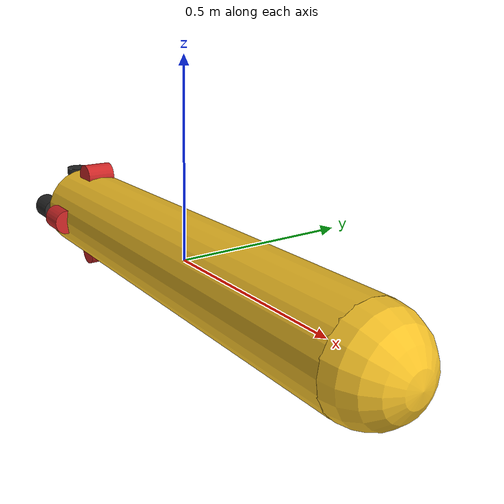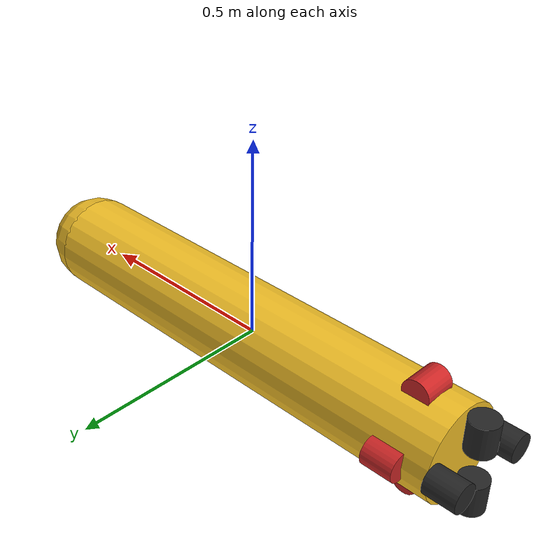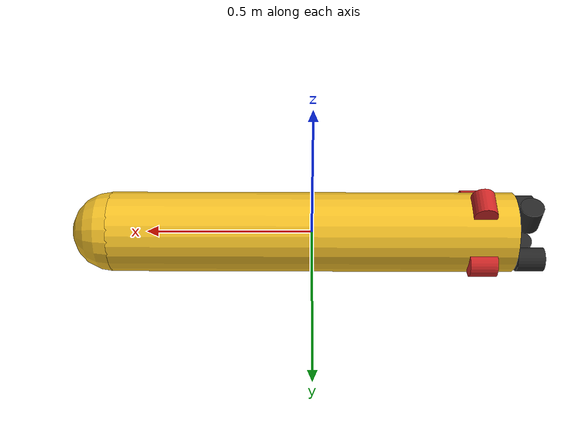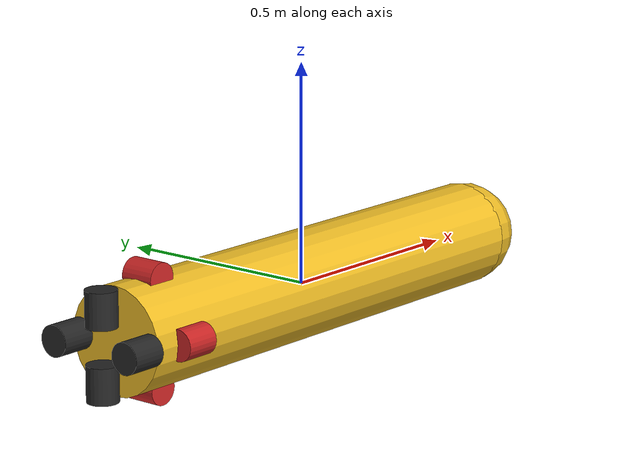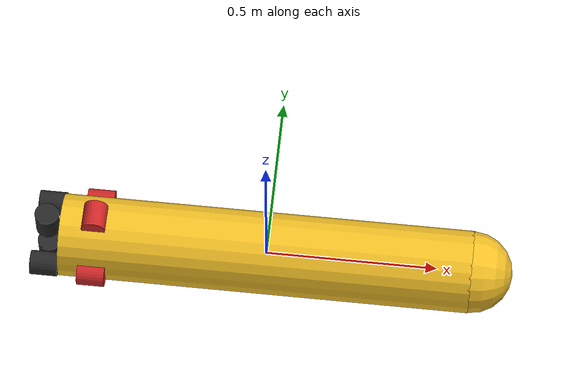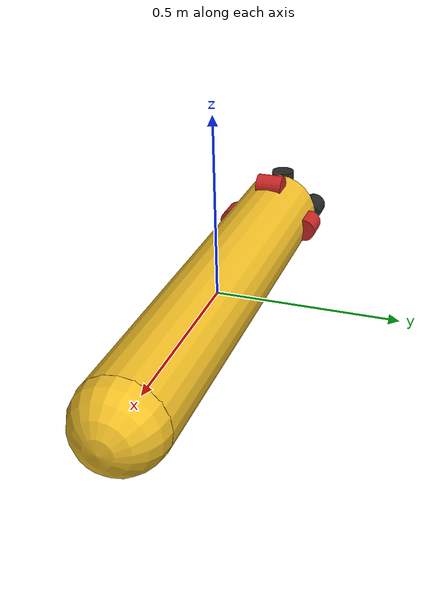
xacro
<?xml version="1.0"?>
<robot name="auv" xmlns:xacro="http://ros.org/wiki/xacro">

  <!-- ====================  Geometry / mass parameters  ==================== -->
  <xacro:property name="hull_length"  value="1.20"/>
  <xacro:property name="hull_radius"  value="0.12"/>
  <xacro:property name="hull_mass"    value="22.0"/>

  <xacro:property name="thr_length"   value="0.08"/>
  <xacro:property name="thr_radius"   value="0.035"/>
  <xacro:property name="thr_mass"     value="0.4"/>

  <!-- Thruster lateral offset "l" and rudder half-arm for moment generation.
       Used only for visual placement; the real moment arms live in
       auv_control (configuration matrix B). -->
  <xacro:property name="thr_offset_y" value="0.10"/>
  <xacro:property name="thr_offset_z" value="0.08"/>
  <xacro:property name="rud_offset_x" value="-0.50"/>

  <!-- ====================  Materials  ==================== -->
  <material name="hull_yellow">
    <color rgba="0.95 0.75 0.15 1.0"/>
  </material>
  <material name="thr_dark">
    <color rgba="0.15 0.15 0.15 1.0"/>
  </material>
  <material name="rud_red">
    <color rgba="0.8 0.15 0.15 1.0"/>
  </material>

  <!-- ====================  Macros  ==================== -->
  <xacro:macro name="cylinder_inertia" params="m r l">
    <inertia
      ixx="${m*(3*r*r + l*l)/12}" ixy="0" ixz="0"
      iyy="${m*(3*r*r + l*l)/12}" iyz="0"
      izz="${m*r*r/2}"/>
  </xacro:macro>

  <xacro:macro name="thruster" params="name xyz rpy color">
    <link name="${name}">
      <visual>
        <origin xyz="0 0 0" rpy="0 ${pi/2} 0"/>
        <geometry>
          <cylinder length="${thr_length}" radius="${thr_radius}"/>
        </geometry>
        <material name="${color}"/>
      </visual>
      <collision>
        <origin xyz="0 0 0" rpy="0 ${pi/2} 0"/>
        <geometry>
          <cylinder length="${thr_length}" radius="${thr_radius}"/>
        </geometry>
      </collision>
      <inertial>
        <mass value="${thr_mass}"/>
        <xacro:cylinder_inertia m="${thr_mass}" r="${thr_radius}" l="${thr_length}"/>
      </inertial>
    </link>
    <joint name="${name}_joint" type="fixed">
      <parent link="base_link"/>
      <child  link="${name}"/>
      <origin xyz="${xyz}" rpy="${rpy}"/>
    </joint>
  </xacro:macro>

  <link name="base_link">
    <visual>
      <origin xyz="0 0 0" rpy="0 ${pi/2} 0"/>
      <geometry>
        <cylinder length="${hull_length}" radius="${hull_radius}"/>
      </geometry>
      <material name="hull_yellow"/>
    </visual>
    <collision>
      <origin xyz="0 0 0" rpy="0 ${pi/2} 0"/>
      <geometry>
        <cylinder length="${hull_length}" radius="${hull_radius}"/>
      </geometry>
    </collision>
    <inertial>
      <mass value="${hull_mass}"/>
      <xacro:cylinder_inertia m="${hull_mass}" r="${hull_radius}" l="${hull_length}"/>
    </inertial>
  </link>

  <!-- Rounded nose cone (cosmetic) -->
  <link name="nose">
    <visual>
      <origin xyz="0 0 0" rpy="0 ${pi/2} 0"/>
      <geometry>
        <sphere radius="${hull_radius}"/>
      </geometry>
      <material name="hull_yellow"/>
    </visual>
    <inertial>
      <mass value="0.01"/>
      <inertia ixx="1e-5" iyy="1e-5" izz="1e-5" ixy="0" ixz="0" iyz="0"/>
    </inertial>
  </link>
  <joint name="nose_joint" type="fixed">
    <parent link="base_link"/>
    <child  link="nose"/>
    <origin xyz="${hull_length/2} 0 0" rpy="0 0 0"/>
  </joint>

  <!-- ====================  Thrusters (u1: horizontal surge pair)  ==================== -->
  <xacro:thruster name="thruster_u1_port"
                  xyz="${-hull_length/2 - thr_length/2}  ${ thr_offset_y} 0"
                  rpy="0 0 0" color="thr_dark"/>
  <xacro:thruster name="thruster_u1_stbd"
                  xyz="${-hull_length/2 - thr_length/2}  ${-thr_offset_y} 0"
                  rpy="0 0 0" color="thr_dark"/>

  <!-- u2: vertical heave pair (tunnel thrusters, small offset in z) -->
  <xacro:thruster name="thruster_u2_top"
                  xyz="${-hull_length/2 - thr_length/2} 0  ${ thr_offset_z}"
                  rpy="0 ${pi/2} 0" color="thr_dark"/>
  <xacro:thruster name="thruster_u2_bot"
                  xyz="${-hull_length/2 - thr_length/2} 0  ${-thr_offset_z}"
                  rpy="0 ${pi/2} 0" color="thr_dark"/>

  <!-- u3: horizontal rudder pair (pitch authority — ports top/bottom of tail) -->
  <xacro:thruster name="rudder_u3_top"
                  xyz="${rud_offset_x} 0  ${ hull_radius}"
                  rpy="0 0 ${pi/2}" color="rud_red"/>
  <xacro:thruster name="rudder_u3_bot"
                  xyz="${rud_offset_x} 0  ${-hull_radius}"
                  rpy="0 0 ${pi/2}" color="rud_red"/>

  <!-- u4: vertical rudder pair (yaw authority — ports on sides of tail) -->
  <xacro:thruster name="rudder_u4_port"
                  xyz="${rud_offset_x}  ${ hull_radius} 0"
                  rpy="${pi/2} 0 0" color="rud_red"/>
  <xacro:thruster name="rudder_u4_stbd"
                  xyz="${rud_offset_x}  ${-hull_radius} 0"
                  rpy="${pi/2} 0 0" color="rud_red"/>

  <!-- ====================  Gazebo plugins  ==================== -->
  <!-- Body wrench applied by auv_controller. Topic: /auv/wrench  -->
  <gazebo>
    <plugin name="gazebo_ros_force_body" filename="libgazebo_ros_force.so">
      <ros>
        <namespace>/auv</namespace>
        <remapping>gazebo_ros_force:=wrench</remapping>
      </ros>
      <link_name>base_link</link_name>
      <force_frame>link</force_frame>
    </plugin>
  </gazebo>

  <!-- Ground-truth odometry (pose + twist) so the controller has x(t) -->
  <gazebo>
    <plugin name="p3d_base_link" filename="libgazebo_ros_p3d.so">
      <ros>
        <namespace>/auv</namespace>
        <remapping>odom:=odom</remapping>
      </ros>
      <body_name>base_link</body_name>
      <frame_name>world</frame_name>
      <update_rate>50.0</update_rate>
      <gaussian_noise>0.0</gaussian_noise>
    </plugin>
  </gazebo>

  <!-- Hull material for Gazebo -->
  <gazebo reference="base_link">
    <material>Gazebo/Yellow</material>
  </gazebo>
  <gazebo reference="nose">
    <material>Gazebo/Yellow</material>
  </gazebo>

</robot>
